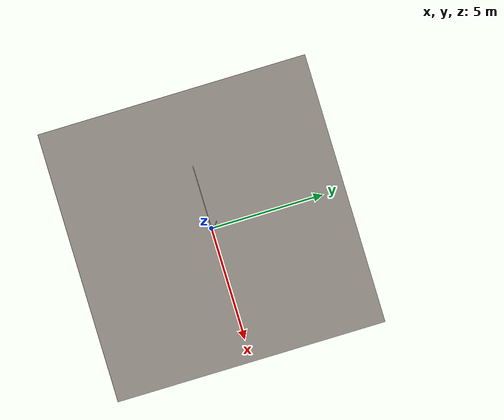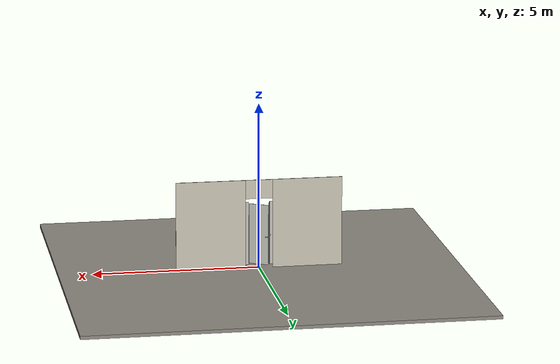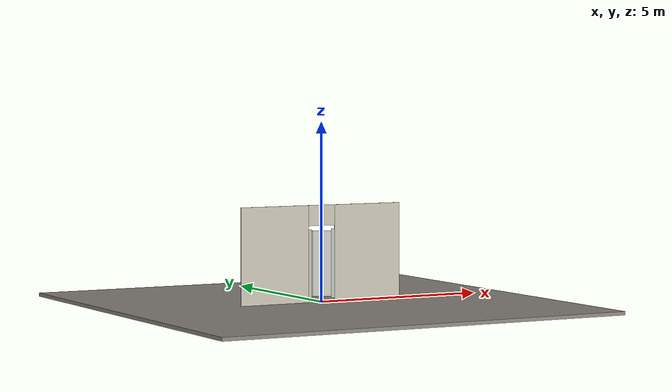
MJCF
<?xml version="1.0" ?>
<mujoco model="db0291_stall_minimal">
  <compiler angle="radian" meshdir="../../hardware" texturedir="../../textures" autolimits="true" inertiafromgeom="false"/>
  <option timestep="0.002" integrator="implicitfast" cone="elliptic" impratio="10" noslip_iterations="3">
    <flag multiccd="enable"/>
  </option>
  <size memory="16M"/>
  <default>
    <geom condim="4" solref="0.005 1" solimp="0.95 0.99 0.001"/>
    <joint solreflimit="0.005 1" solimplimit="0.95 0.99 0.001"/>
    <tendon solreflimit="0.005 1"/>
    <equality solref="0.002 1"/>
  </default>
  <visual>
    <headlight ambient="0.4 0.4 0.4" diffuse="0.7 0.7 0.7" specular="0.2 0.2 0.2"/>
    <quality shadowsize="4096"/>
    <map znear="0.01" zfar="60"/>
  </visual>
  <asset>
    <material name="mat_floor" rgba="0.55 0.53 0.5 1" specular="0.2" shininess="0.15" reflectance="0"/>
    <material name="mat_wall" rgba="0.78 0.76 0.7 1" specular="0.2" shininess="0.1" reflectance="0"/>
    <material name="mat_frame" rgba="0.75 0.75 0.72 1" specular="0.2" shininess="0.65" reflectance="0"/>
    <material name="mat_shoe" rgba="0.75 0.76 0.77 1" specular="0.8" shininess="0.65" reflectance="0.4"/>
    <material name="mat_headrail" rgba="0.8 0.81 0.83 1" specular="0.8" shininess="0.6" reflectance="0.4"/>
    <material name="mat_leaf" rgba="0.75 0.75 0.72 1" specular="0.2" shininess="0.65" reflectance="0"/>
    <material name="mat_op_stainless" rgba="0.75 0.76 0.77 1" specular="0.8" shininess="0.65" reflectance="0.4"/>
    <material name="mat_hinge" rgba="0.65 0.66 0.68 1" specular="0.74" shininess="0.5" reflectance="0.36"/>
    <texture name="skybox" type="skybox" builtin="gradient" rgb1="0.6 0.7 0.85" rgb2="0.9 0.92 0.95" width="256" height="256"/>
  </asset>
  <worldbody>
    <light name="sun" pos="1.5 -2.5 4" dir="-0.3 0.5 -0.8" directional="true" diffuse="0.8 0.8 0.8" specular="0.3 0.3 0.3" castshadow="true"/>
    <light name="fill" pos="-1.5 2.5 3" dir="0.3 -0.5 -0.7" directional="true" diffuse="0.35 0.35 0.4" castshadow="false"/>
    <camera name="robot_view" pos="0 -2.59375 1.77625" xyaxes="1 0 0 0 0.26963 0.962964" fovy="52"/>
    <camera name="far_view" pos="0 2.59375 1.77625" xyaxes="-1 0 0 0 -0.26963 0.962964" fovy="52"/>
    <camera name="iso" pos="-1.97125 -2.17875 2.19125" xyaxes="0.741536 -0.670913 0 0.242917 0.268487 0.932151" fovy="46"/>
    <camera name="detail_handle" pos="-0.045 -0.7555 1.28" xyaxes="0.97561 0.219512 0 -0.070934 0.315262 0.94635" fovy="38"/>
    <geom name="floor" type="box" size="6 6 0.05" pos="0 0 -0.05" material="mat_floor" group="0" contype="1" conaffinity="1" friction="0.8 0.005 0.0001" density="2400"/>
    <geom name="wall_left" type="box" size="1.0445 0.0125 1.35" pos="-1.4555 0 1.35" material="mat_wall" group="0" contype="1" conaffinity="1" friction="0.6 0.005 0.0001" density="800"/>
    <geom name="wall_right" type="box" size="1.0445 0.0125 1.35" pos="1.4555 0 1.35" material="mat_wall" group="0" contype="1" conaffinity="1" friction="0.6 0.005 0.0001" density="800"/>
    <geom name="wall_header" type="box" size="0.411 0.0125 0.285" pos="0 0 2.415" material="mat_wall" group="0" contype="1" conaffinity="1" friction="0.6 0.005 0.0001" density="800"/>
    <geom name="pilaster_l" type="box" size="0.05 0.0065 0.965" pos="-0.361 0 1.065" material="mat_frame" group="0" contype="1" conaffinity="1" friction="0.6 0.005 0.0001" density="1400"/>
    <geom name="pilaster_r" type="box" size="0.05 0.0065 0.965" pos="0.361 0 1.065" material="mat_frame" group="0" contype="1" conaffinity="1" friction="0.6 0.005 0.0001" density="1400"/>
    <geom name="latch_keeper_n" type="box" size="0.02 0.0025 0.02" pos="-0.331 0.007 1" material="mat_op_stainless" group="0" contype="1" conaffinity="1" friction="0.6 0.005 0.0001" density="7900"/>
    <geom name="latch_keeper_p" type="box" size="0.02 0.0025 0.02" pos="-0.331 0.022 1" material="mat_op_stainless" group="0" contype="1" conaffinity="1" friction="0.6 0.005 0.0001" density="7900"/>
    <geom name="latch_keeper_base" type="box" size="0.02 0.01 0.003" pos="-0.331 0.0145 0.976" material="mat_op_stainless" group="0" contype="1" conaffinity="1" friction="0.6 0.005 0.0001" density="7900"/>
    <geom name="stop_strip" type="box" size="0.01 0.006 0.915" pos="-0.301 -0.0125 1.065" material="mat_frame" group="0" contype="1" conaffinity="1" friction="0.6 0.005 0.0001" density="1400"/>
    <site name="approach_point" pos="0 -1.2 0" quat="1 0 0 0" size="0.05" rgba="0.2 0.9 0.2 0.5" group="4"/>
    <site name="goal_point" pos="0 1 0" quat="1 0 0 0" size="0.05" rgba="0.2 0.9 0.2 0.5" group="4"/>
    <site name="door_plane_center" pos="0 0 1" quat="1 0 0 0" size="0.02" rgba="0.2 0.9 0.2 0.5" group="4"/>
    <body name="leaf_riser" pos="0.311 0 0">
      <inertial pos="0 0 0" mass="0.01" quat="1 0 0 0" diaginertia="0.000001 0.000001 0.000001"/>
      <joint name="leaf_rise" type="slide" axis="0 0 1" limited="true" range="0 0.03" damping="1" armature="0.5" ref="0.003333"/>
      <body name="leaf" pos="0 0 0">
        <inertial pos="-0.276033 0.1305 1.065" mass="20.926409" quat="0.612372 -0.353553 0.612372 0.353553" diaginertia="0.649187775 5.840332263 6.48893061"/>
        <joint name="leaf_hinge" type="hinge" axis="0 0 -1" pos="-0.05 0 0" limited="true" range="0 1.919862" damping="0.09576" frictionloss="0.151352" armature="0.02" ref="0.523599"/>
        <geom name="leaf_slab" type="box" size="0.305 0.0065 0.915" pos="-0.276033 0.1305 1.065" quat="0.965926 0 0 -0.258819" material="mat_leaf" group="0" contype="1" conaffinity="1" friction="0.35 0.005 0.0001" density="1"/>
        <body name="slide_latch" pos="-0.489619 0.270557 1" quat="0.965926 0 0 -0.258819">
          <inertial pos="0.004044 0.001618 0" mass="0.140251" quat="-0.027514 -0.027514 0.706571 0.706571" diaginertia="0.000009989 0.000084063 0.000085949"/>
          <joint name="slide_latch_slide" type="slide" axis="1 0 0" limited="true" range="0 0.03" damping="0.5" frictionloss="0.5" armature="0.1" ref="0.03"/>
          <geom name="slide_latch_bar" type="box" size="0.04 0.004 0.012" pos="0 0 0" material="mat_op_stainless" group="0" contype="1" conaffinity="1" friction="0.6 0.005 0.0001" density="7900"/>
          <geom name="slide_latch_knob" type="capsule" size="0.005 0.012" pos="0.03 0.012 0" quat="0.707107 -0.707107 0 0" material="mat_op_stainless" group="0" contype="1" conaffinity="1" friction="0.6 0.005 0.0001" density="7850"/>
          <site name="grip_latch" pos="0.03 0.03 0" quat="1 0 0 0" size="0.01" rgba="0.2 0.9 0.2 0.5" group="4"/>
        </body>
      </body>
    </body>
  </worldbody>
  <equality>
    <joint name="leaf_rise_couple" joint1="leaf_rise" joint2="leaf_hinge" polycoef="0 0.006366 0 0 0" active="true"/>
  </equality>
  <sensor>
    <jointpos name="leaf_hinge_pos" joint="leaf_hinge"/>
    <jointvel name="leaf_hinge_vel" joint="leaf_hinge"/>
    <jointpos name="slide_latch_slide_pos" joint="slide_latch_slide"/>
    <jointvel name="slide_latch_slide_vel" joint="slide_latch_slide"/>
  </sensor>
</mujoco>
